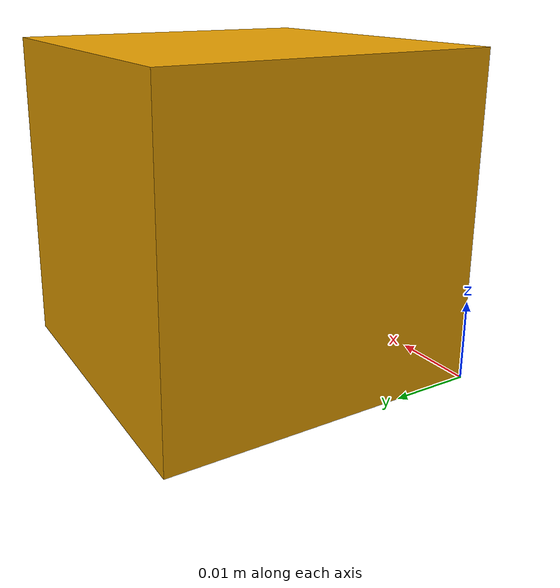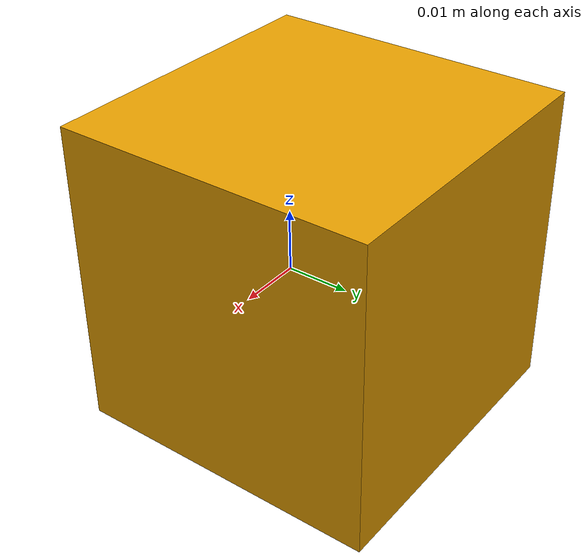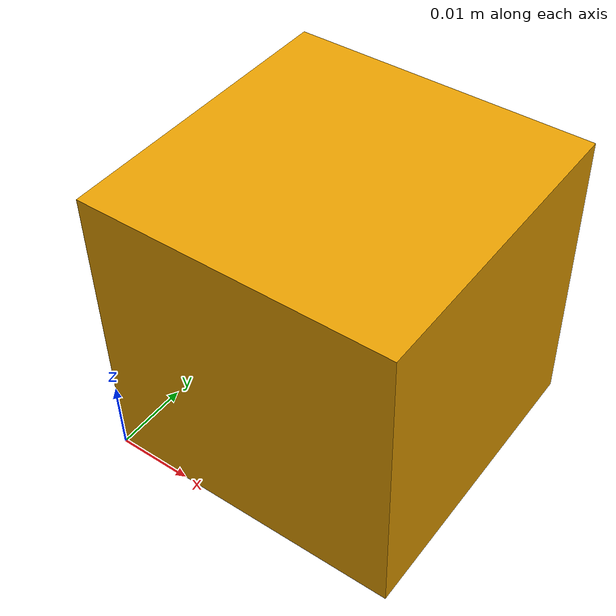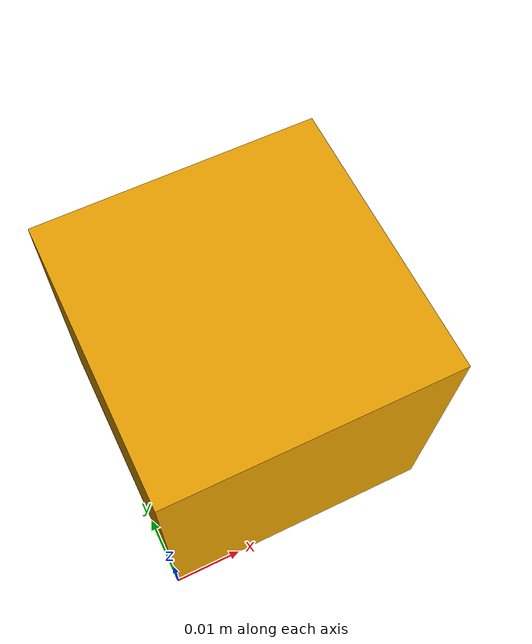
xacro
<robot name="depth_camera" xmlns:xacro="http://www.ros.org/wiki/xacro">
	  <link name="rr_depth_camera">
	    <inertial>
	      <origin xyz="0.02 0.02 0.02" />
	      <mass value="0.5" />
	      <inertia  ixx="0.5" ixy="0.0"  ixz="0.0"  iyy="0.5"  iyz="0.0"  izz="0.5" />
	    </inertial>
	    <visual>
	      <origin xyz="0.02 0.02 0.02"/>
	      <geometry>
		<box size="0.04 0.04 0.04" />
	      </geometry>
	    </visual>
	    <collision>
	      <origin xyz="0.02 0.02 0.02"/>
	      <geometry>
		<box size="0.04 0.04 0.04" />
	      </geometry>
	    </collision>
	  </link>
	  <gazebo>
	    <material>Gazebo/Blue</material>
	     <mu1>1000</mu1>
	     <mu2>1000</mu2>
	 <sensor type="depth" name="rr_depth_camera">
      <update_rate>30.0</update_rate>
      <camera name="rr_depth_camera">
        <horizontal_fov>1.221730476</horizontal_fov>  <!-- 70 deg -->
        <image>
          <width>800</width>
          <height>600</height>
        </image>
        <clip>
          <near>0.05</near>
          <far>7.0</far>         <!-- outdoor down to 3m depending on luminosity -->
        </clip>
        <noise>
          <type>gaussian</type>
          <mean>0.0</mean>
          <stddev>0.007</stddev>
        </noise>
      </camera>

      <plugin name="kinect_depth_optical_frame_controller" filename="libgazebo_ros_openni_kinect.so">
        <baseline>0.2</baseline>
        <alwaysOn>true</alwaysOn>
        <updateRate>30.0</updateRate>
        <cameraName>depth_camera</cameraName>
        <imageTopicName>/depth_camera/image_raw</imageTopicName>
        <cameraInfoTopicName>/cameras/depth/camera_info</cameraInfoTopicName>
        <depthImageTopicName>/cameras/depth/image_raw</depthImageTopicName>
        <depthImageInfoTopicName>/depth_camera/depth/camera_info</depthImageInfoTopicName>
        <depthImageCameraInfoTopicName>/depth_camera/camera_info</depthImageCameraInfoTopicName>
        <pointCloudTopicName>/depth_camera/depth/points</pointCloudTopicName>
        <frameName>kinect_depth_optical_frame</frameName>
        <pointCloudCutoff>0.5</pointCloudCutoff>
        <distortionK1>0</distortionK1>
        <distortionK2>0</distortionK2>
        <distortionK3>0</distortionK3>
        <distortionT1>0</distortionT1>
        <distortionT2>0</distortionT2>
        <CxPrime>0</CxPrime>
        <Cx>0</Cx>
        <Cy>0</Cy>
        <focalLength>0</focalLength>
        <hackBaseline>0</hackBaseline>
      </plugin>
    </sensor>
	  </gazebo>
</robot>
